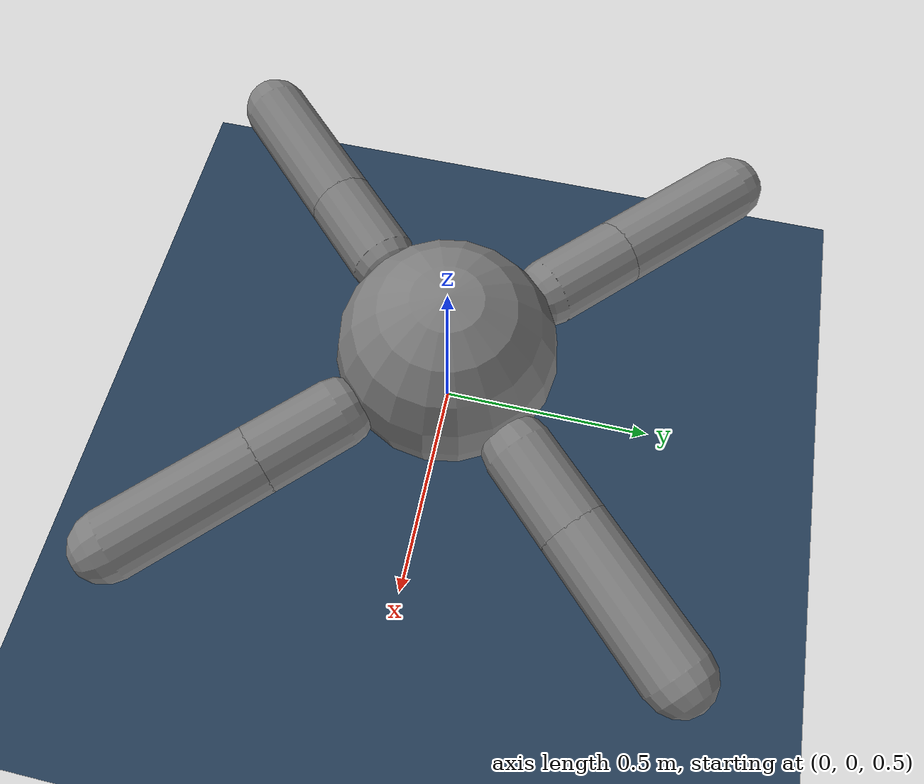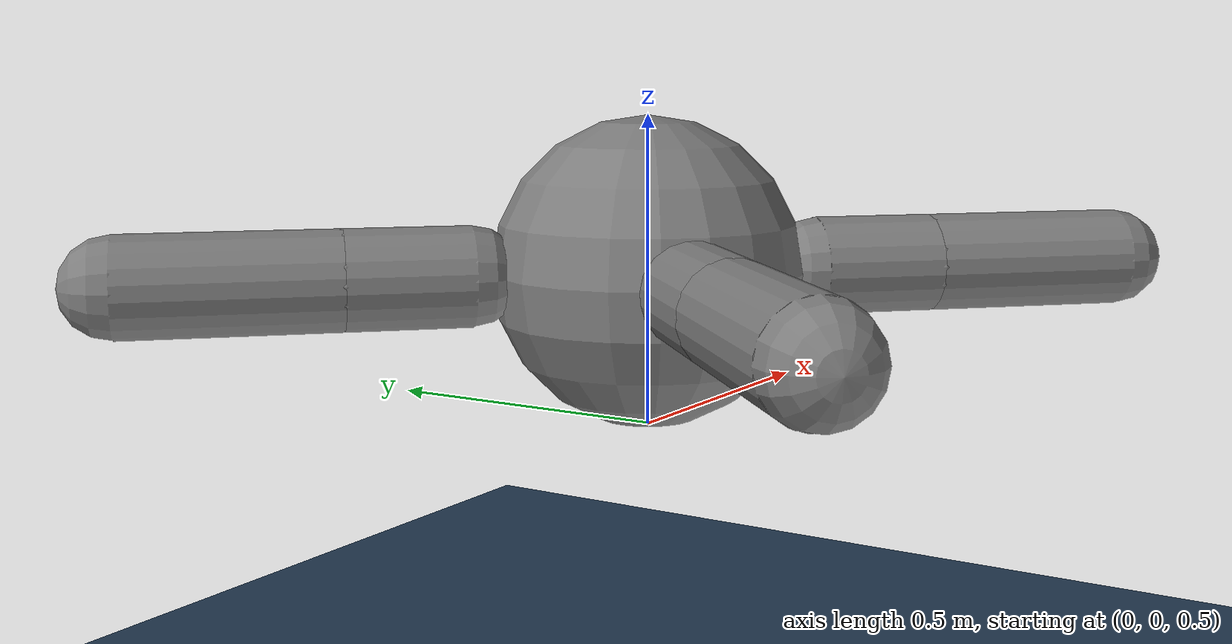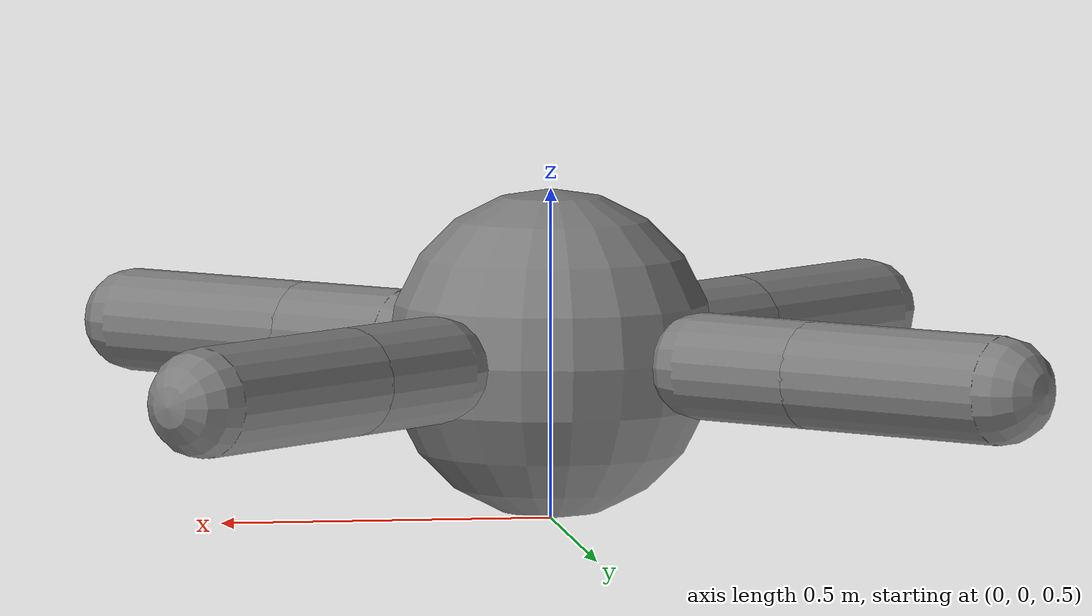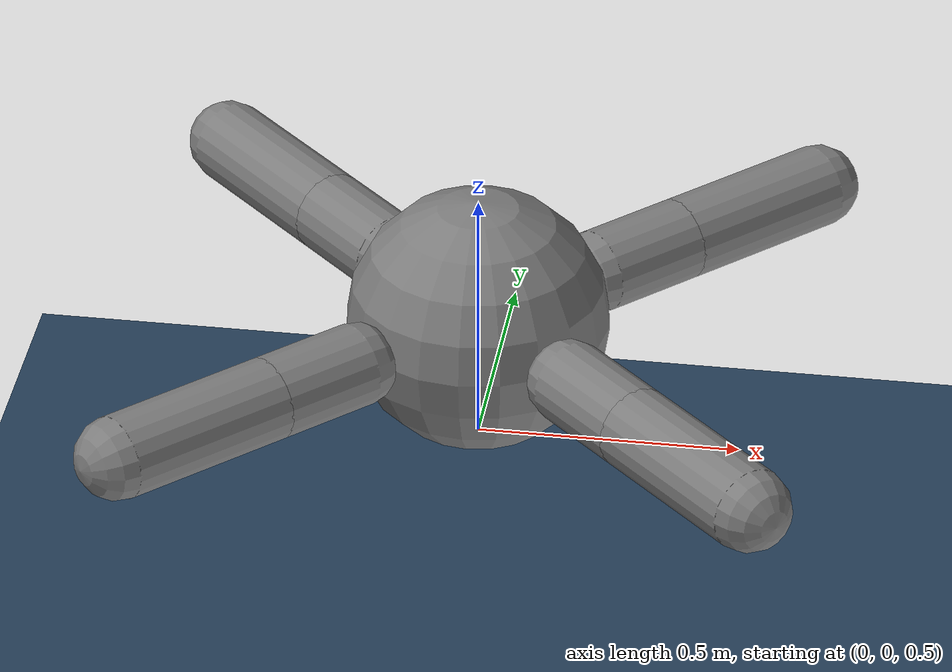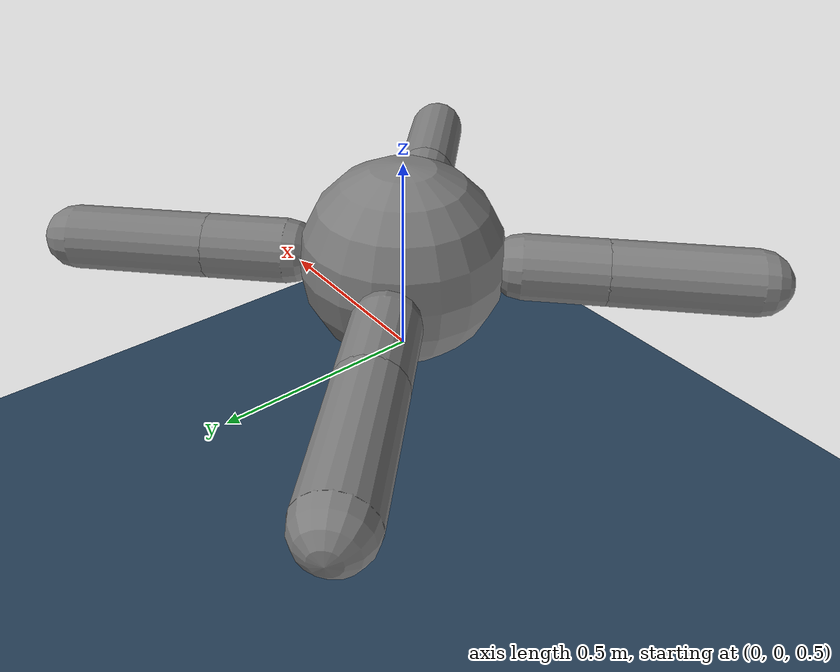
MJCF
<!-- data/assets/ant/scene.xml -->
<mujoco model="ant_scene">
  <include file="ant.xml"/>

  <visual>
    <headlight diffuse="0.6 0.6 0.6" ambient="0.3 0.3 0.3" specular="0 0 0"/>
    <rgba haze="0.15 0.25 0.35 1"/>
    <global azimuth="220" elevation="-10"/>
    <quality shadowsize="8192"/>
  </visual>

  <asset>
    <texture type="skybox" builtin="gradient" rgb1="0.3 0.5 0.7" rgb2="0 0 0" width="512" height="3072"/>
    <texture type="2d" name="groundplane" builtin="checker" mark="edge" rgb1="0.2 0.3 0.4" rgb2="0.1 0.2 0.3"
      markrgb="0.8 0.8 0.8" width="300" height="300"/>
    <material name="groundplane" texture="groundplane" texuniform="true" texrepeat="5 5" reflectance="0.2"/>
  </asset>

  <worldbody>
    <geom name="floor" size="0 0 0.05" type="plane" material="groundplane"/>
  </worldbody>

</mujoco>

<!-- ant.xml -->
<mujoco model="ant">
  <compiler angle="radian"/>

  <default>
    <motor ctrlrange="-1 1" ctrllimited="true"/>
    <default class="body">
      <geom condim="1" friction="1.0 0.05 0.05" solimp=".9 .99 .003" solref=".015 1"/>
      <joint limited="true" solimplimit="0 .99 .01"/>
    </default>
  </default>

  <worldbody>
    <body name="torso" pos="0 0 0.75" childclass="body">
      <freejoint name="root"/>
      <geom name="torso" type="sphere" size="0.25" density="1000"/>

      <!-- Front-Right Leg -->
      <body name="front_right_hip" pos="0.2 -0.2 0">
        <joint name="front_right_hip_x" type="hinge" axis="1 0 0" range="-0.5236 0.5236"
               actuatorfrcrange="-150 150" stiffness="400" damping="40" armature=".02"/>
        <joint name="front_right_hip_y" type="hinge" axis="0 1 0" range="-0.5236 0.5236"
               actuatorfrcrange="-150 150" stiffness="400" damping="40" armature=".02"/>
        <geom name="front_right_hip" type="capsule" fromto="0 0 0 0.14 -0.14 0" size="0.08" density="1000"/>

        <body name="front_right_ankle" pos="0.14 -0.14 0">
          <joint name="front_right_ankle" type="hinge" axis="0 1 0" range="0.5236 1.9199"
                 actuatorfrcrange="-150 150" stiffness="400" damping="40" armature=".02"/>
          <geom name="front_right_ankle" type="capsule" fromto="0 0 0 0.24 -0.24 0" size="0.08" density="1000"/>
        </body>
      </body>

      <!-- Front-Left Leg -->
      <body name="front_left_hip" pos="0.2 0.2 0">
        <joint name="front_left_hip_x" type="hinge" axis="1 0 0" range="-0.5236 0.5236"
               actuatorfrcrange="-150 150" stiffness="400" damping="40" armature=".02"/>
        <joint name="front_left_hip_y" type="hinge" axis="0 1 0" range="-0.5236 0.5236"
               actuatorfrcrange="-150 150" stiffness="400" damping="40" armature=".02"/>
        <geom name="front_left_hip" type="capsule" fromto="0 0 0 0.14 0.14 0" size="0.08" density="1000"/>

        <body name="front_left_ankle" pos="0.14 0.14 0">
          <joint name="front_left_ankle" type="hinge" axis="0 1 0" range="0.5236 1.9199"
                 actuatorfrcrange="-150 150" stiffness="400" damping="40" armature=".02"/>
          <geom name="front_left_ankle" type="capsule" fromto="0 0 0 0.24 0.24 0" size="0.08" density="1000"/>
        </body>
      </body>

      <!-- Back-Right Leg -->
      <body name="back_right_hip" pos="-0.2 -0.2 0">
        <joint name="back_right_hip_x" type="hinge" axis="1 0 0" range="-0.5236 0.5236"
               actuatorfrcrange="-150 150" stiffness="400" damping="40" armature=".02"/>
        <joint name="back_right_hip_y" type="hinge" axis="0 1 0" range="-0.5236 0.5236"
               actuatorfrcrange="-150 150" stiffness="400" damping="40" armature=".02"/>
        <geom name="back_right_hip" type="capsule" fromto="0 0 0 -0.14 -0.14 0" size="0.08" density="1000"/>

        <body name="back_right_ankle" pos="-0.14 -0.14 0">
          <joint name="back_right_ankle" type="hinge" axis="0 1 0" range="0.5236 1.9199"
                 actuatorfrcrange="-150 150" stiffness="400" damping="40" armature=".02"/>
          <geom name="back_right_ankle" type="capsule" fromto="0 0 0 -0.24 -0.24 0" size="0.08" density="1000"/>
        </body>
      </body>

      <!-- Back-Left Leg -->
      <body name="back_left_hip" pos="-0.2 0.2 0">
        <joint name="back_left_hip_x" type="hinge" axis="1 0 0" range="-0.5236 0.5236"
               actuatorfrcrange="-150 150" stiffness="400" damping="40" armature=".02"/>
        <joint name="back_left_hip_y" type="hinge" axis="0 1 0" range="-0.5236 0.5236"
               actuatorfrcrange="-150 150" stiffness="400" damping="40" armature=".02"/>
        <geom name="back_left_hip" type="capsule" fromto="0 0 0 -0.14 0.14 0" size="0.08" density="1000"/>

        <body name="back_left_ankle" pos="-0.14 0.14 0">
          <joint name="back_left_ankle" type="hinge" axis="0 1 0" range="0.5236 1.9199"
                 actuatorfrcrange="-150 150" stiffness="400" damping="40" armature=".02"/>
          <geom name="back_left_ankle" type="capsule" fromto="0 0 0 -0.24 0.24 0" size="0.08" density="1000"/>
        </body>
      </body>

    </body>
  </worldbody>

  <actuator>
    <!-- Front-Right -->
    <motor name="front_right_hip_x"  gear="150" joint="front_right_hip_x"/>
    <motor name="front_right_hip_y"  gear="150" joint="front_right_hip_y"/>
    <motor name="front_right_ankle"  gear="150" joint="front_right_ankle"/>

    <!-- Front-Left -->
    <motor name="front_left_hip_x"   gear="150" joint="front_left_hip_x"/>
    <motor name="front_left_hip_y"   gear="150" joint="front_left_hip_y"/>
    <motor name="front_left_ankle"   gear="150" joint="front_left_ankle"/>

    <!-- Back-Right -->
    <motor name="back_right_hip_x"   gear="150" joint="back_right_hip_x"/>
    <motor name="back_right_hip_y"   gear="150" joint="back_right_hip_y"/>
    <motor name="back_right_ankle"   gear="150" joint="back_right_ankle"/>

    <!-- Back-Left -->
    <motor name="back_left_hip_x"    gear="150" joint="back_left_hip_x"/>
    <motor name="back_left_hip_y"    gear="150" joint="back_left_hip_y"/>
    <motor name="back_left_ankle"    gear="150" joint="back_left_ankle"/>
  </actuator>

</mujoco>
